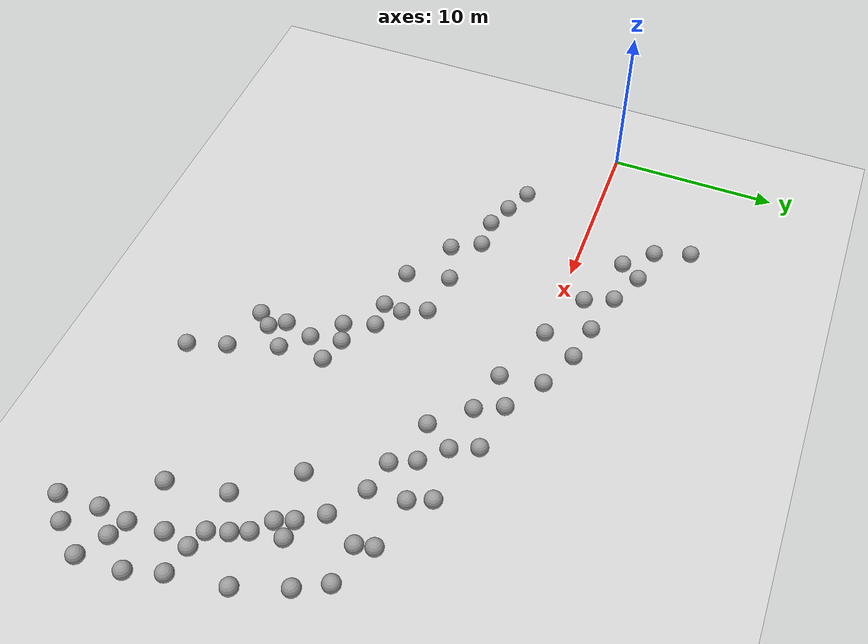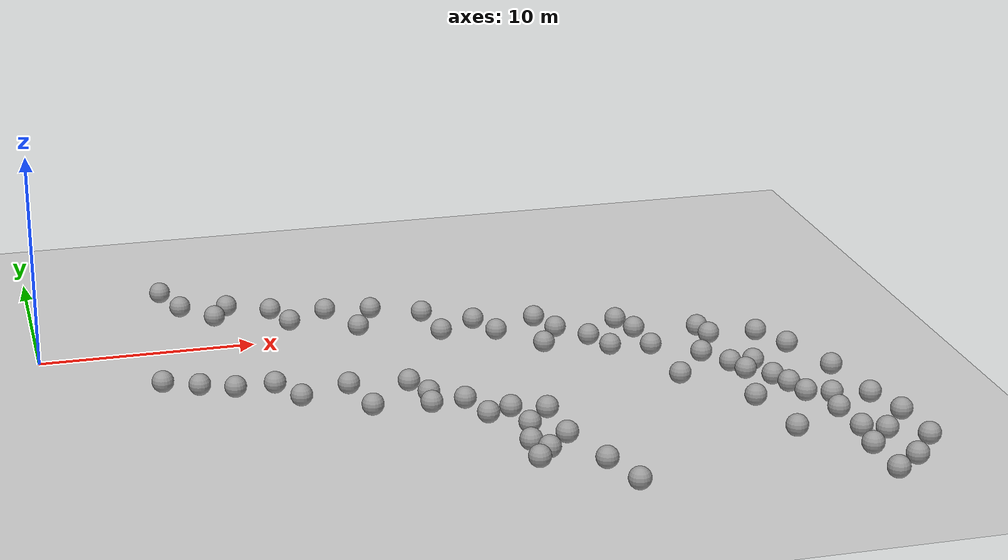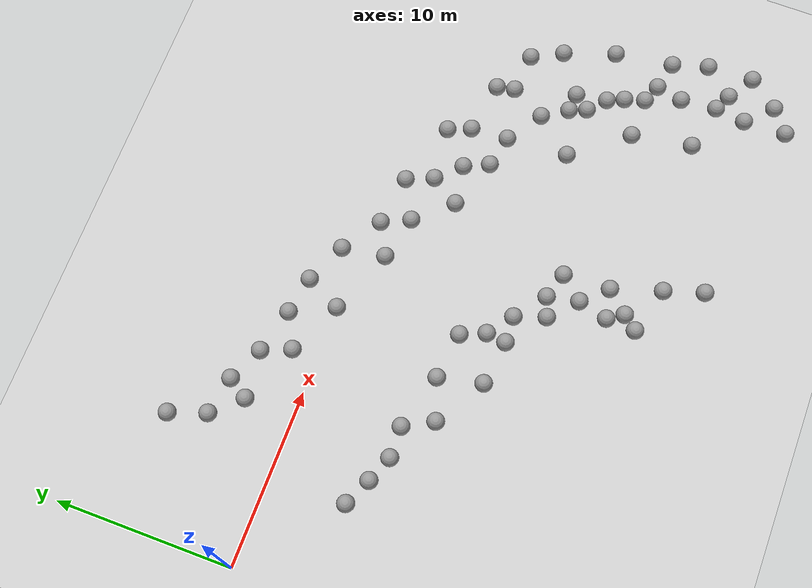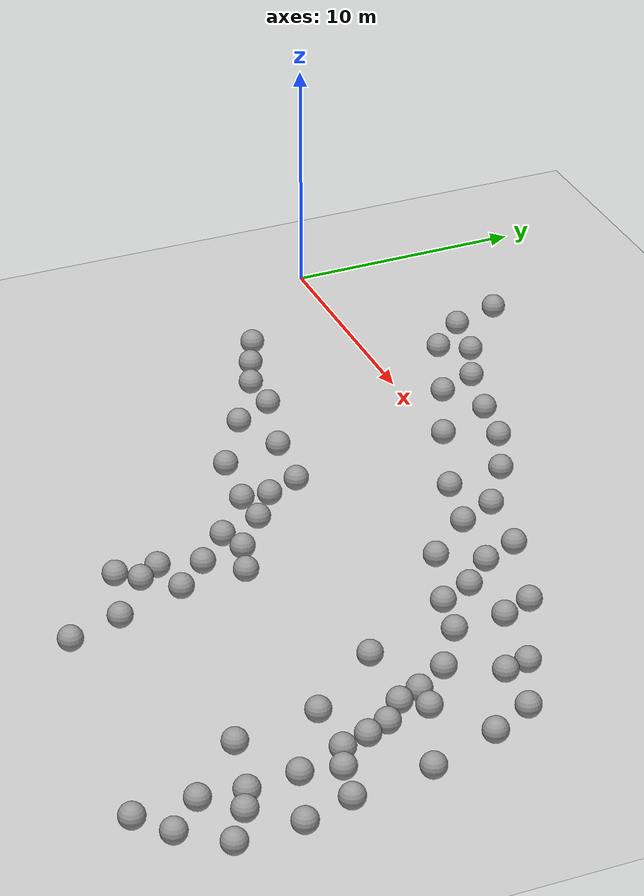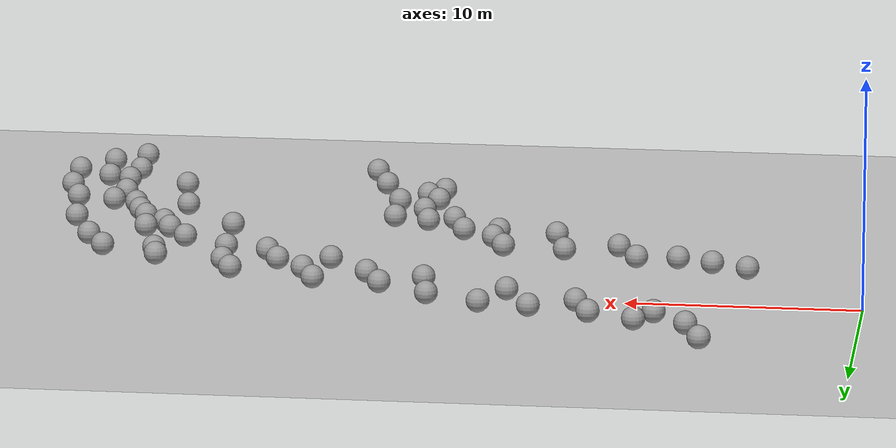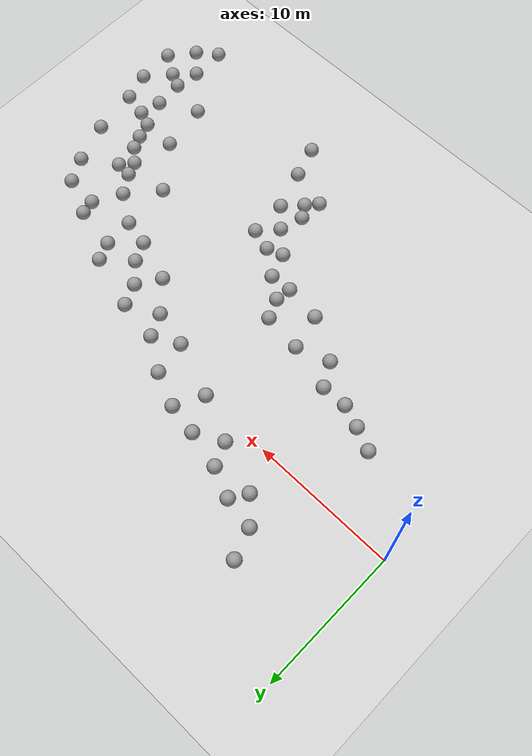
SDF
<sdf version="1.6">
 <world name="default">
  <model name="ground_plane">
   <static>1</static>
   <link name="link">
    <collision name="collision">
     <geometry><plane><normal>0 0 1</normal><size>100 100</size></plane></geometry>
     <surface><friction><ode><mu>100</mu><mu2>50</mu2></ode></friction></surface>
    </collision>
    <visual name="visual">
     <cast_shadows>0</cast_shadows>
     <geometry><plane><normal>0 0 1</normal><size>100 100</size></plane></geometry>
     <material>
      <script><uri>file://media/materials/scripts/gazebo.material</uri><name>Gazebo/Grey</name></script>
     </material>
    </visual>
   </link>
  </model>
  <model name="unit_sphere_0">
   <pose>5.15486 -4.38811 0.5 0 -0 0</pose>
   <link name="link">
    <inertial>
     <mass>1</mass>
     <inertia><ixx>0.1</ixx><ixy>0</ixy><ixz>0</ixz><iyy>0.1</iyy><iyz>0</iyz><izz>0.1</izz></inertia>
    </inertial>
    <collision name="collision"><geometry><sphere><radius>0.5</radius></sphere></geometry></collision>
    <visual name="visual">
     <geometry><sphere><radius>0.5</radius></sphere></geometry>
     <material>
      <script><name>Gazebo/Grey</name><uri>file://media/materials/scripts/gazebo.material</uri></script>
     </material>
    </visual>
   </link>
  </model>
  <model name="unit_sphere_0_clone">
   <pose>6.71384 -5.09296 0.5 0 -0 0</pose>
   <link name="link">
    <inertial>
     <mass>1</mass>
     <inertia><ixx>0.1</ixx><ixy>0</ixy><ixz>0</ixz><iyy>0.1</iyy><iyz>0</iyz><izz>0.1</izz></inertia>
    </inertial>
    <collision name="collision"><geometry><sphere><radius>0.5</radius></sphere></geometry></collision>
    <visual name="visual">
     <geometry><sphere><radius>0.5</radius></sphere></geometry>
     <material>
      <script><name>Gazebo/Grey</name><uri>file://media/materials/scripts/gazebo.material</uri></script>
     </material>
    </visual>
   </link>
  </model>
  <model name="unit_sphere_0_clone_0">
   <pose>8.23139 -5.68918 0.5 0 -0 0</pose>
   <link name="link">
    <inertial>
     <mass>1</mass>
     <inertia><ixx>0.1</ixx><ixy>0</ixy><ixz>0</ixz><iyy>0.1</iyy><iyz>0</iyz><izz>0.1</izz></inertia>
    </inertial>
    <collision name="collision"><geometry><sphere><radius>0.5</radius></sphere></geometry></collision>
    <visual name="visual">
     <geometry><sphere><radius>0.5</radius></sphere></geometry>
     <material>
      <script><name>Gazebo/Grey</name><uri>file://media/materials/scripts/gazebo.material</uri></script>
     </material>
    </visual>
   </link>
  </model>
  <model name="unit_sphere_0_clone_1">
   <pose>10.0198 -5.65385 0.5 0 -0 0</pose>
   <link name="link">
    <inertial>
     <mass>1</mass>
     <inertia><ixx>0.1</ixx><ixy>0</ixy><ixz>0</ixz><iyy>0.1</iyy><iyz>0</iyz><izz>0.1</izz></inertia>
    </inertial>
    <collision name="collision"><geometry><sphere><radius>0.5</radius></sphere></geometry></collision>
    <visual name="visual">
     <geometry><sphere><radius>0.5</radius></sphere></geometry>
     <material>
      <script><name>Gazebo/Grey</name><uri>file://media/materials/scripts/gazebo.material</uri></script>
     </material>
    </visual>
   </link>
  </model>
  <model name="unit_sphere_0_clone_2">
   <pose>10.9217 -7.29328 0.5 0 -0 0</pose>
   <link name="link">
    <inertial>
     <mass>1</mass>
     <inertia><ixx>0.1</ixx><ixy>0</ixy><ixz>0</ixz><iyy>0.1</iyy><iyz>0</iyz><izz>0.1</izz></inertia>
    </inertial>
    <collision name="collision"><geometry><sphere><radius>0.5</radius></sphere></geometry></collision>
    <visual name="visual">
     <geometry><sphere><radius>0.5</radius></sphere></geometry>
     <material>
      <script><name>Gazebo/Grey</name><uri>file://media/materials/scripts/gazebo.material</uri></script>
     </material>
    </visual>
   </link>
  </model>
  <model name="unit_sphere_0_clone_3">
   <pose>13.2089 -6.50721 0.5 0 -0 0</pose>
   <link name="link">
    <inertial>
     <mass>1</mass>
     <inertia><ixx>0.1</ixx><ixy>0</ixy><ixz>0</ixz><iyy>0.1</iyy><iyz>0</iyz><izz>0.1</izz></inertia>
    </inertial>
    <collision name="collision"><geometry><sphere><radius>0.5</radius></sphere></geometry></collision>
    <visual name="visual">
     <geometry><sphere><radius>0.5</radius></sphere></geometry>
     <material>
      <script><name>Gazebo/Grey</name><uri>file://media/materials/scripts/gazebo.material</uri></script>
     </material>
    </visual>
   </link>
  </model>
  <model name="unit_sphere_0_clone_4">
   <pose>13.7778 -8.99338 0.5 0 -0 0</pose>
   <link name="link">
    <inertial>
     <mass>1</mass>
     <inertia><ixx>0.1</ixx><ixy>0</ixy><ixz>0</ixz><iyy>0.1</iyy><iyz>0</iyz><izz>0.1</izz></inertia>
    </inertial>
    <collision name="collision"><geometry><sphere><radius>0.5</radius></sphere></geometry></collision>
    <visual name="visual">
     <geometry><sphere><radius>0.5</radius></sphere></geometry>
     <material>
      <script><name>Gazebo/Grey</name><uri>file://media/materials/scripts/gazebo.material</uri></script>
     </material>
    </visual>
   </link>
  </model>
  <model name="unit_sphere_0_clone_5">
   <pose>15.8904 -6.82279 0.5 0 -0 0</pose>
   <link name="link">
    <inertial>
     <mass>1</mass>
     <inertia><ixx>0.1</ixx><ixy>0</ixy><ixz>0</ixz><iyy>0.1</iyy><iyz>0</iyz><izz>0.1</izz></inertia>
    </inertial>
    <collision name="collision"><geometry><sphere><radius>0.5</radius></sphere></geometry></collision>
    <visual name="visual">
     <geometry><sphere><radius>0.5</radius></sphere></geometry>
     <material>
      <script><name>Gazebo/Grey</name><uri>file://media/materials/scripts/gazebo.material</uri></script>
     </material>
    </visual>
   </link>
  </model>
  <model name="unit_sphere_0_clone_6">
   <pose>16.3495 -9.32648 0.5 0 -0 0</pose>
   <link name="link">
    <inertial>
     <mass>1</mass>
     <inertia><ixx>0.1</ixx><ixy>0</ixy><ixz>0</ixz><iyy>0.1</iyy><iyz>0</iyz><izz>0.1</izz></inertia>
    </inertial>
    <collision name="collision"><geometry><sphere><radius>0.5</radius></sphere></geometry></collision>
    <visual name="visual">
     <geometry><sphere><radius>0.5</radius></sphere></geometry>
     <material>
      <script><name>Gazebo/Grey</name><uri>file://media/materials/scripts/gazebo.material</uri></script>
     </material>
    </visual>
   </link>
  </model>
  <model name="unit_sphere_0_clone_7">
   <pose>7.08774 4.29856 0.5 0 -0 0</pose>
   <link name="link">
    <inertial>
     <mass>1</mass>
     <inertia><ixx>0.1</ixx><ixy>0</ixy><ixz>0</ixz><iyy>0.1</iyy><iyz>0</iyz><izz>0.1</izz></inertia>
    </inertial>
    <collision name="collision"><geometry><sphere><radius>0.5</radius></sphere></geometry></collision>
    <visual name="visual">
     <geometry><sphere><radius>0.5</radius></sphere></geometry>
     <material>
      <script><name>Gazebo/Grey</name><uri>file://media/materials/scripts/gazebo.material</uri></script>
     </material>
    </visual>
   </link>
  </model>
  <model name="unit_sphere_0_clone_8">
   <pose>8.53893 2.74635 0.5 0 -0 0</pose>
   <link name="link">
    <inertial>
     <mass>1</mass>
     <inertia><ixx>0.1</ixx><ixy>0</ixy><ixz>0</ixz><iyy>0.1</iyy><iyz>0</iyz><izz>0.1</izz></inertia>
    </inertial>
    <collision name="collision"><geometry><sphere><radius>0.5</radius></sphere></geometry></collision>
    <visual name="visual">
     <geometry><sphere><radius>0.5</radius></sphere></geometry>
     <material>
      <script><name>Gazebo/Grey</name><uri>file://media/materials/scripts/gazebo.material</uri></script>
     </material>
    </visual>
   </link>
  </model>
  <model name="unit_sphere_0_clone_9">
   <pose>9.28861 3.90002 0.5 0 -0 0</pose>
   <link name="link">
    <inertial>
     <mass>1</mass>
     <inertia><ixx>0.1</ixx><ixy>0</ixy><ixz>0</ixz><iyy>0.1</iyy><iyz>0</iyz><izz>0.1</izz></inertia>
    </inertial>
    <collision name="collision"><geometry><sphere><radius>0.5</radius></sphere></geometry></collision>
    <visual name="visual">
     <geometry><sphere><radius>0.5</radius></sphere></geometry>
     <material>
      <script><name>Gazebo/Grey</name><uri>file://media/materials/scripts/gazebo.material</uri></script>
     </material>
    </visual>
   </link>
  </model>
  <model name="unit_sphere_0_clone_10">
   <pose>11.2754 3.00631 0.5 0 -0 0</pose>
   <link name="link">
    <inertial>
     <mass>1</mass>
     <inertia><ixx>0.1</ixx><ixy>0</ixy><ixz>0</ixz><iyy>0.1</iyy><iyz>0</iyz><izz>0.1</izz></inertia>
    </inertial>
    <collision name="collision"><geometry><sphere><radius>0.5</radius></sphere></geometry></collision>
    <visual name="visual">
     <geometry><sphere><radius>0.5</radius></sphere></geometry>
     <material>
      <script><name>Gazebo/Grey</name><uri>file://media/materials/scripts/gazebo.material</uri></script>
     </material>
    </visual>
   </link>
  </model>
  <model name="unit_sphere_0_clone_11">
   <pose>11.9433 1.38371 0.5 0 -0 0</pose>
   <link name="link">
    <inertial>
     <mass>1</mass>
     <inertia><ixx>0.1</ixx><ixy>0</ixy><ixz>0</ixz><iyy>0.1</iyy><iyz>0</iyz><izz>0.1</izz></inertia>
    </inertial>
    <collision name="collision"><geometry><sphere><radius>0.5</radius></sphere></geometry></collision>
    <visual name="visual">
     <geometry><sphere><radius>0.5</radius></sphere></geometry>
     <material>
      <script><name>Gazebo/Grey</name><uri>file://media/materials/scripts/gazebo.material</uri></script>
     </material>
    </visual>
   </link>
  </model>
  <model name="unit_sphere_0_clone_12">
   <pose>13.8434 2.38423 0.5 0 -0 0</pose>
   <link name="link">
    <inertial>
     <mass>1</mass>
     <inertia><ixx>0.1</ixx><ixy>0</ixy><ixz>0</ixz><iyy>0.1</iyy><iyz>0</iyz><izz>0.1</izz></inertia>
    </inertial>
    <collision name="collision"><geometry><sphere><radius>0.5</radius></sphere></geometry></collision>
    <visual name="visual">
     <geometry><sphere><radius>0.5</radius></sphere></geometry>
     <material>
      <script><name>Gazebo/Grey</name><uri>file://media/materials/scripts/gazebo.material</uri></script>
     </material>
    </visual>
   </link>
  </model>
  <model name="unit_sphere_0_clone_13">
   <pose>15 0 0.5 0 -0 0</pose>
   <link name="link">
    <inertial>
     <mass>1</mass>
     <inertia><ixx>0.1</ixx><ixy>0</ixy><ixz>0</ixz><iyy>0.1</iyy><iyz>0</iyz><izz>0.1</izz></inertia>
    </inertial>
    <collision name="collision"><geometry><sphere><radius>0.5</radius></sphere></geometry></collision>
    <visual name="visual">
     <geometry><sphere><radius>0.5</radius></sphere></geometry>
     <material>
      <script><name>Gazebo/Grey</name><uri>file://media/materials/scripts/gazebo.material</uri></script>
     </material>
    </visual>
   </link>
  </model>
  <model name="unit_sphere_0_clone_14">
   <pose>16 2 0.5 0 -0 0</pose>
   <link name="link">
    <inertial>
     <mass>1</mass>
     <inertia><ixx>0.1</ixx><ixy>0</ixy><ixz>0</ixz><iyy>0.1</iyy><iyz>0</iyz><izz>0.1</izz></inertia>
    </inertial>
    <collision name="collision"><geometry><sphere><radius>0.5</radius></sphere></geometry></collision>
    <visual name="visual">
     <geometry><sphere><radius>0.5</radius></sphere></geometry>
     <material>
      <script><name>Gazebo/Grey</name><uri>file://media/materials/scripts/gazebo.material</uri></script>
     </material>
    </visual>
   </link>
  </model>
  <model name="unit_sphere_0_clone_15">
   <pose>18.3018 0.995003 0.5 0 -0 0</pose>
   <link name="link">
    <inertial>
     <mass>1</mass>
     <inertia><ixx>0.1</ixx><ixy>0</ixy><ixz>0</ixz><iyy>0.1</iyy><iyz>0</iyz><izz>0.1</izz></inertia>
    </inertial>
    <collision name="collision"><geometry><sphere><radius>0.5</radius></sphere></geometry></collision>
    <visual name="visual">
     <geometry><sphere><radius>0.5</radius></sphere></geometry>
     <material>
      <script><name>Gazebo/Grey</name><uri>file://media/materials/scripts/gazebo.material</uri></script>
     </material>
    </visual>
   </link>
  </model>
  <model name="unit_sphere_0_clone_16">
   <pose>20.4898 -0.468795 0.5 0 -0 0</pose>
   <link name="link">
    <inertial>
     <mass>1</mass>
     <inertia><ixx>0.1</ixx><ixy>0</ixy><ixz>0</ixz><iyy>0.1</iyy><iyz>0</iyz><izz>0.1</izz></inertia>
    </inertial>
    <collision name="collision"><geometry><sphere><radius>0.5</radius></sphere></geometry></collision>
    <visual name="visual">
     <geometry><sphere><radius>0.5</radius></sphere></geometry>
     <material>
      <script><name>Gazebo/Grey</name><uri>file://media/materials/scripts/gazebo.material</uri></script>
     </material>
    </visual>
   </link>
  </model>
  <model name="unit_sphere_0_clone_17">
   <pose>24.0194 -2.37066 0.5 0 -0 0</pose>
   <link name="link">
    <inertial>
     <mass>1</mass>
     <inertia><ixx>0.1</ixx><ixy>0</ixy><ixz>0</ixz><iyy>0.1</iyy><iyz>0</iyz><izz>0.1</izz></inertia>
    </inertial>
    <collision name="collision"><geometry><sphere><radius>0.5</radius></sphere></geometry></collision>
    <visual name="visual">
     <geometry><sphere><radius>0.5</radius></sphere></geometry>
     <material>
      <script><name>Gazebo/Grey</name><uri>file://media/materials/scripts/gazebo.material</uri></script>
     </material>
    </visual>
   </link>
  </model>
  <model name="unit_sphere_0_clone_18">
   <pose>27.7503 -5.42436 0.5 0 -0 0</pose>
   <link name="link">
    <inertial>
     <mass>1</mass>
     <inertia><ixx>0.1</ixx><ixy>0</ixy><ixz>0</ixz><iyy>0.1</iyy><iyz>0</iyz><izz>0.1</izz></inertia>
    </inertial>
    <collision name="collision"><geometry><sphere><radius>0.5</radius></sphere></geometry></collision>
    <visual name="visual">
     <geometry><sphere><radius>0.5</radius></sphere></geometry>
     <material>
      <script><name>Gazebo/Grey</name><uri>file://media/materials/scripts/gazebo.material</uri></script>
     </material>
    </visual>
   </link>
  </model>
  <model name="unit_sphere_0_clone_19">
   <pose>31.725 -8.24813 0.5 -0.000582 0.034039 -2.3e-05</pose>
   <link name="link">
    <inertial>
     <mass>1</mass>
     <inertia><ixx>0.1</ixx><ixy>0</ixy><ixz>0</ixz><iyy>0.1</iyy><iyz>0</iyz><izz>0.1</izz></inertia>
    </inertial>
    <collision name="collision"><geometry><sphere><radius>0.5</radius></sphere></geometry></collision>
    <visual name="visual">
     <geometry><sphere><radius>0.5</radius></sphere></geometry>
     <material>
      <script><name>Gazebo/Grey</name><uri>file://media/materials/scripts/gazebo.material</uri></script>
     </material>
    </visual>
   </link>
  </model>
  <model name="unit_sphere_0_clone_20">
   <pose>33.8259 -12.4839 0.5 0 -0 0</pose>
   <link name="link">
    <inertial>
     <mass>1</mass>
     <inertia><ixx>0.1</ixx><ixy>0</ixy><ixz>0</ixz><iyy>0.1</iyy><iyz>0</iyz><izz>0.1</izz></inertia>
    </inertial>
    <collision name="collision"><geometry><sphere><radius>0.5</radius></sphere></geometry></collision>
    <visual name="visual">
     <geometry><sphere><radius>0.5</radius></sphere></geometry>
     <material>
      <script><name>Gazebo/Grey</name><uri>file://media/materials/scripts/gazebo.material</uri></script>
     </material>
    </visual>
   </link>
  </model>
  <model name="unit_sphere_0_clone_21">
   <pose>34.8751 -19.1706 0.5 0 -0 0</pose>
   <link name="link">
    <inertial>
     <mass>1</mass>
     <inertia><ixx>0.1</ixx><ixy>0</ixy><ixz>0</ixz><iyy>0.1</iyy><iyz>0</iyz><izz>0.1</izz></inertia>
    </inertial>
    <collision name="collision"><geometry><sphere><radius>0.5</radius></sphere></geometry></collision>
    <visual name="visual">
     <geometry><sphere><radius>0.5</radius></sphere></geometry>
     <material>
      <script><name>Gazebo/Grey</name><uri>file://media/materials/scripts/gazebo.material</uri></script>
     </material>
    </visual>
   </link>
  </model>
  <model name="unit_sphere_0_clone_50">
   <pose>18.4855 -10.9718 0.5 0 -0 0</pose>
   <link name="link">
    <inertial>
     <mass>1</mass>
     <inertia><ixx>0.1</ixx><ixy>0</ixy><ixz>0</ixz><iyy>0.1</iyy><iyz>0</iyz><izz>0.1</izz></inertia>
    </inertial>
    <collision name="collision"><geometry><sphere><radius>0.5</radius></sphere></geometry></collision>
    <visual name="visual">
     <geometry><sphere><radius>0.5</radius></sphere></geometry>
     <material>
      <script><name>Gazebo/Grey</name><uri>file://media/materials/scripts/gazebo.material</uri></script>
     </material>
    </visual>
   </link>
  </model>
  <model name="unit_sphere_0_clone_51">
   <pose>19.5403 -14.0463 0.5 -0.045638 -0.021146 0.024372</pose>
   <link name="link">
    <inertial>
     <mass>1</mass>
     <inertia><ixx>0.1</ixx><ixy>0</ixy><ixz>0</ixz><iyy>0.1</iyy><iyz>0</iyz><izz>0.1</izz></inertia>
    </inertial>
    <collision name="collision"><geometry><sphere><radius>0.5</radius></sphere></geometry></collision>
    <visual name="visual">
     <geometry><sphere><radius>0.5</radius></sphere></geometry>
     <material>
      <script><name>Gazebo/Grey</name><uri>file://media/materials/scripts/gazebo.material</uri></script>
     </material>
    </visual>
   </link>
  </model>
  <model name="unit_sphere_0_clone_52">
   <pose>22.8458 -18.6808 0.5 0 -0 0</pose>
   <link name="link">
    <inertial>
     <mass>1</mass>
     <inertia><ixx>0.1</ixx><ixy>0</ixy><ixz>0</ixz><iyy>0.1</iyy><iyz>0</iyz><izz>0.1</izz></inertia>
    </inertial>
    <collision name="collision"><geometry><sphere><radius>0.5</radius></sphere></geometry></collision>
    <visual name="visual">
     <geometry><sphere><radius>0.5</radius></sphere></geometry>
     <material>
      <script><name>Gazebo/Grey</name><uri>file://media/materials/scripts/gazebo.material</uri></script>
     </material>
    </visual>
   </link>
  </model>
  <model name="unit_sphere_0_clone_70">
   <pose>22.1416 -16.4882 0.5 0 -0 0</pose>
   <link name="link">
    <inertial>
     <mass>1</mass>
     <inertia><ixx>0.1</ixx><ixy>0</ixy><ixz>0</ixz><iyy>0.1</iyy><iyz>0</iyz><izz>0.1</izz></inertia>
    </inertial>
    <collision name="collision"><geometry><sphere><radius>0.5</radius></sphere></geometry></collision>
    <visual name="visual">
     <geometry><sphere><radius>0.5</radius></sphere></geometry>
     <material>
      <script><name>Gazebo/Grey</name><uri>file://media/materials/scripts/gazebo.material</uri></script>
     </material>
    </visual>
   </link>
  </model>
  <model name="unit_sphere_0_clone_115">
   <pose>27.0928 -2.03293 0.5 0 -0 0</pose>
   <link name="link">
    <inertial>
     <mass>1</mass>
     <inertia><ixx>0.1</ixx><ixy>0</ixy><ixz>0</ixz><iyy>0.1</iyy><iyz>0</iyz><izz>0.1</izz></inertia>
    </inertial>
    <collision name="collision"><geometry><sphere><radius>0.5</radius></sphere></geometry></collision>
    <visual name="visual">
     <geometry><sphere><radius>0.5</radius></sphere></geometry>
     <material>
      <script><name>Gazebo/Grey</name><uri>file://media/materials/scripts/gazebo.material</uri></script>
     </material>
    </visual>
   </link>
  </model>
  <model name="unit_sphere_0_clone_116">
   <pose>30.5875 -3.79442 0.5 -0.027113 -0.006178 6.5e-05</pose>
   <link name="link">
    <inertial>
     <mass>1</mass>
     <inertia><ixx>0.1</ixx><ixy>0</ixy><ixz>0</ixz><iyy>0.1</iyy><iyz>0</iyz><izz>0.1</izz></inertia>
    </inertial>
    <collision name="collision"><geometry><sphere><radius>0.5</radius></sphere></geometry></collision>
    <visual name="visual">
     <geometry><sphere><radius>0.5</radius></sphere></geometry>
     <material>
      <script><name>Gazebo/Grey</name><uri>file://media/materials/scripts/gazebo.material</uri></script>
     </material>
    </visual>
   </link>
  </model>
  <model name="unit_sphere_0_clone_117">
   <pose>35 -9.57963 0.5 0 -0 0</pose>
   <link name="link">
    <inertial>
     <mass>1</mass>
     <inertia><ixx>0.1</ixx><ixy>0</ixy><ixz>0</ixz><iyy>0.1</iyy><iyz>0</iyz><izz>0.1</izz></inertia>
    </inertial>
    <collision name="collision"><geometry><sphere><radius>0.5</radius></sphere></geometry></collision>
    <visual name="visual">
     <geometry><sphere><radius>0.5</radius></sphere></geometry>
     <material>
      <script><name>Gazebo/Grey</name><uri>file://media/materials/scripts/gazebo.material</uri></script>
     </material>
    </visual>
   </link>
  </model>
  <model name="unit_sphere_0_clone_118">
   <pose>34.6829 -16.5119 0.5 0 -0 0</pose>
   <link name="link">
    <inertial>
     <mass>1</mass>
     <inertia><ixx>0.1</ixx><ixy>0</ixy><ixz>0</ixz><iyy>0.1</iyy><iyz>0</iyz><izz>0.1</izz></inertia>
    </inertial>
    <collision name="collision"><geometry><sphere><radius>0.5</radius></sphere></geometry></collision>
    <visual name="visual">
     <geometry><sphere><radius>0.5</radius></sphere></geometry>
     <material>
      <script><name>Gazebo/Grey</name><uri>file://media/materials/scripts/gazebo.material</uri></script>
     </material>
    </visual>
   </link>
  </model>
  <model name="unit_sphere_1">
   <pose>35.4809 -12.8641 0.5 0 -0 0</pose>
   <link name="link">
    <inertial>
     <mass>1</mass>
     <inertia><ixx>0.1</ixx><ixy>0</ixy><ixz>0</ixz><iyy>0.1</iyy><iyz>0</iyz><izz>0.1</izz></inertia>
    </inertial>
    <collision name="collision"><geometry><sphere><radius>0.5</radius></sphere></geometry></collision>
    <visual name="visual">
     <geometry><sphere><radius>0.5</radius></sphere></geometry>
     <material>
      <script><name>Gazebo/Grey</name><uri>file://media/materials/scripts/gazebo.material</uri></script>
     </material>
    </visual>
   </link>
  </model>
  <model name="unit_sphere_1_clone">
   <pose>36.0806 -14.8694 0.5 0 -0 0</pose>
   <link name="link">
    <inertial>
     <mass>1</mass>
     <inertia><ixx>0.1</ixx><ixy>0</ixy><ixz>0</ixz><iyy>0.1</iyy><iyz>0</iyz><izz>0.1</izz></inertia>
    </inertial>
    <collision name="collision"><geometry><sphere><radius>0.5</radius></sphere></geometry></collision>
    <visual name="visual">
     <geometry><sphere><radius>0.5</radius></sphere></geometry>
     <material>
      <script><name>Gazebo/Grey</name><uri>file://media/materials/scripts/gazebo.material</uri></script>
     </material>
    </visual>
   </link>
  </model>
  <model name="unit_sphere_1_clone_0">
   <pose>36.1901 -17.4913 0.5 0 -0 0</pose>
   <link name="link">
    <inertial>
     <mass>1</mass>
     <inertia><ixx>0.1</ixx><ixy>0</ixy><ixz>0</ixz><iyy>0.1</iyy><iyz>0</iyz><izz>0.1</izz></inertia>
    </inertial>
    <collision name="collision"><geometry><sphere><radius>0.5</radius></sphere></geometry></collision>
    <visual name="visual">
     <geometry><sphere><radius>0.5</radius></sphere></geometry>
     <material>
      <script><name>Gazebo/Grey</name><uri>file://media/materials/scripts/gazebo.material</uri></script>
     </material>
    </visual>
   </link>
  </model>
  <model name="unit_sphere_1_clone_2">
   <pose>21.1177 -11.0515 0.5 0 -0 0</pose>
   <link name="link">
    <inertial>
     <mass>1</mass>
     <inertia><ixx>0.1</ixx><ixy>0</ixy><ixz>0</ixz><iyy>0.1</iyy><iyz>0</iyz><izz>0.1</izz></inertia>
    </inertial>
    <collision name="collision"><geometry><sphere><radius>0.5</radius></sphere></geometry></collision>
    <visual name="visual">
     <geometry><sphere><radius>0.5</radius></sphere></geometry>
     <material>
      <script><name>Gazebo/Grey</name><uri>file://media/materials/scripts/gazebo.material</uri></script>
     </material>
    </visual>
   </link>
  </model>
  <model name="unit_sphere_1_clone_4">
   <pose>21.2329 -13.709 0.5 0 -0 0</pose>
   <link name="link">
    <inertial>
     <mass>1</mass>
     <inertia><ixx>0.1</ixx><ixy>0</ixy><ixz>0</ixz><iyy>0.1</iyy><iyz>0</iyz><izz>0.1</izz></inertia>
    </inertial>
    <collision name="collision"><geometry><sphere><radius>0.5</radius></sphere></geometry></collision>
    <visual name="visual">
     <geometry><sphere><radius>0.5</radius></sphere></geometry>
     <material>
      <script><name>Gazebo/Grey</name><uri>file://media/materials/scripts/gazebo.material</uri></script>
     </material>
    </visual>
   </link>
  </model>
  <model name="unit_sphere_1_clone_283">
   <pose>33.0909 -4.99355 0.5 0 -0 0</pose>
   <link name="link">
    <inertial>
     <mass>1</mass>
     <inertia><ixx>0.1</ixx><ixy>0</ixy><ixz>0</ixz><iyy>0.1</iyy><iyz>0</iyz><izz>0.1</izz></inertia>
    </inertial>
    <collision name="collision"><geometry><sphere><radius>0.5</radius></sphere></geometry></collision>
    <visual name="visual">
     <geometry><sphere><radius>0.5</radius></sphere></geometry>
     <material>
      <script><name>Gazebo/Grey</name><uri>file://media/materials/scripts/gazebo.material</uri></script>
     </material>
    </visual>
   </link>
  </model>
  <model name="unit_sphere_1_clone_284">
   <pose>32.4057 -10.9332 0.5 0 -0 0</pose>
   <link name="link">
    <inertial>
     <mass>1</mass>
     <inertia><ixx>0.1</ixx><ixy>0</ixy><ixz>0</ixz><iyy>0.1</iyy><iyz>0</iyz><izz>0.1</izz></inertia>
    </inertial>
    <collision name="collision"><geometry><sphere><radius>0.5</radius></sphere></geometry></collision>
    <visual name="visual">
     <geometry><sphere><radius>0.5</radius></sphere></geometry>
     <material>
      <script><name>Gazebo/Grey</name><uri>file://media/materials/scripts/gazebo.material</uri></script>
     </material>
    </visual>
   </link>
  </model>
  <model name="unit_sphere_1_clone_285">
   <pose>33.9856 -6.71412 0.5 0 -0 0</pose>
   <link name="link">
    <inertial>
     <mass>1</mass>
     <inertia><ixx>0.1</ixx><ixy>0</ixy><ixz>0</ixz><iyy>0.1</iyy><iyz>0</iyz><izz>0.1</izz></inertia>
    </inertial>
    <collision name="collision"><geometry><sphere><radius>0.5</radius></sphere></geometry></collision>
    <visual name="visual">
     <geometry><sphere><radius>0.5</radius></sphere></geometry>
     <material>
      <script><name>Gazebo/Grey</name><uri>file://media/materials/scripts/gazebo.material</uri></script>
     </material>
    </visual>
   </link>
  </model>
  <model name="unit_sphere_1_clone_286">
   <pose>29.7496 -6.77487 0.5 0 -0 0</pose>
   <link name="link">
    <inertial>
     <mass>1</mass>
     <inertia><ixx>0.1</ixx><ixy>0</ixy><ixz>0</ixz><iyy>0.1</iyy><iyz>0</iyz><izz>0.1</izz></inertia>
    </inertial>
    <collision name="collision"><geometry><sphere><radius>0.5</radius></sphere></geometry></collision>
    <visual name="visual">
     <geometry><sphere><radius>0.5</radius></sphere></geometry>
     <material>
      <script><name>Gazebo/Grey</name><uri>file://media/materials/scripts/gazebo.material</uri></script>
     </material>
    </visual>
   </link>
  </model>
  <model name="unit_sphere_1_clone_287">
   <pose>30.8158 -4.79641 0.5 0.02699 0.006274 6.7e-05</pose>
   <link name="link">
    <inertial>
     <mass>1</mass>
     <inertia><ixx>0.1</ixx><ixy>0</ixy><ixz>0</ixz><iyy>0.1</iyy><iyz>0</iyz><izz>0.1</izz></inertia>
    </inertial>
    <collision name="collision"><geometry><sphere><radius>0.5</radius></sphere></geometry></collision>
    <visual name="visual">
     <geometry><sphere><radius>0.5</radius></sphere></geometry>
     <material>
      <script><name>Gazebo/Grey</name><uri>file://media/materials/scripts/gazebo.material</uri></script>
     </material>
    </visual>
   </link>
  </model>
  <model name="unit_sphere_1_clone_288">
   <pose>27.6151 -3.30373 0.5 0 -0 0</pose>
   <link name="link">
    <inertial>
     <mass>1</mass>
     <inertia><ixx>0.1</ixx><ixy>0</ixy><ixz>0</ixz><iyy>0.1</iyy><iyz>0</iyz><izz>0.1</izz></inertia>
    </inertial>
    <collision name="collision"><geometry><sphere><radius>0.5</radius></sphere></geometry></collision>
    <visual name="visual">
     <geometry><sphere><radius>0.5</radius></sphere></geometry>
     <material>
      <script><name>Gazebo/Grey</name><uri>file://media/materials/scripts/gazebo.material</uri></script>
     </material>
    </visual>
   </link>
  </model>
  <model name="unit_sphere_1_clone_289">
   <pose>21.2148 -2.02354 0.5 0 -0 0</pose>
   <link name="link">
    <inertial>
     <mass>1</mass>
     <inertia><ixx>0.1</ixx><ixy>0</ixy><ixz>0</ixz><iyy>0.1</iyy><iyz>0</iyz><izz>0.1</izz></inertia>
    </inertial>
    <collision name="collision"><geometry><sphere><radius>0.5</radius></sphere></geometry></collision>
    <visual name="visual">
     <geometry><sphere><radius>0.5</radius></sphere></geometry>
     <material>
      <script><name>Gazebo/Grey</name><uri>file://media/materials/scripts/gazebo.material</uri></script>
     </material>
    </visual>
   </link>
  </model>
  <model name="unit_sphere_1_clone_290">
   <pose>25.2705 -3.65337 0.5 0 -0 0</pose>
   <link name="link">
    <inertial>
     <mass>1</mass>
     <inertia><ixx>0.1</ixx><ixy>0</ixy><ixz>0</ixz><iyy>0.1</iyy><iyz>0</iyz><izz>0.1</izz></inertia>
    </inertial>
    <collision name="collision"><geometry><sphere><radius>0.5</radius></sphere></geometry></collision>
    <visual name="visual">
     <geometry><sphere><radius>0.5</radius></sphere></geometry>
     <material>
      <script><name>Gazebo/Grey</name><uri>file://media/materials/scripts/gazebo.material</uri></script>
     </material>
    </visual>
   </link>
  </model>
  <model name="unit_sphere_1_clone_291">
   <pose>18.6935 -1.42997 0.5 0 -0 0</pose>
   <link name="link">
    <inertial>
     <mass>1</mass>
     <inertia><ixx>0.1</ixx><ixy>0</ixy><ixz>0</ixz><iyy>0.1</iyy><iyz>0</iyz><izz>0.1</izz></inertia>
    </inertial>
    <collision name="collision"><geometry><sphere><radius>0.5</radius></sphere></geometry></collision>
    <visual name="visual">
     <geometry><sphere><radius>0.5</radius></sphere></geometry>
     <material>
      <script><name>Gazebo/Grey</name><uri>file://media/materials/scripts/gazebo.material</uri></script>
     </material>
    </visual>
   </link>
  </model>
  <model name="unit_sphere_1_clone_292">
   <pose>6.366 6.35482 0.5 0 -0 0</pose>
   <link name="link">
    <inertial>
     <mass>1</mass>
     <inertia><ixx>0.1</ixx><ixy>0</ixy><ixz>0</ixz><iyy>0.1</iyy><iyz>0</iyz><izz>0.1</izz></inertia>
    </inertial>
    <collision name="collision"><geometry><sphere><radius>0.5</radius></sphere></geometry></collision>
    <visual name="visual">
     <geometry><sphere><radius>0.5</radius></sphere></geometry>
     <material>
      <script><name>Gazebo/Grey</name><uri>file://media/materials/scripts/gazebo.material</uri></script>
     </material>
    </visual>
   </link>
  </model>
  <model name="unit_sphere_0_clone_6_clone">
   <pose>16.4791 -8.20069 0.5 0 -0 0</pose>
   <link name="link">
    <inertial>
     <mass>1</mass>
     <inertia><ixx>0.1</ixx><ixy>0</ixy><ixz>0</ixz><iyy>0.1</iyy><iyz>0</iyz><izz>0.1</izz></inertia>
    </inertial>
    <collision name="collision"><geometry><sphere><radius>0.5</radius></sphere></geometry></collision>
    <visual name="visual">
     <geometry><sphere><radius>0.5</radius></sphere></geometry>
     <material>
      <script><name>Gazebo/Grey</name><uri>file://media/materials/scripts/gazebo.material</uri></script>
     </material>
    </visual>
   </link>
  </model>
  <model name="unit_sphere_0_clone_6_clone_0">
   <pose>17.8797 -9.24904 0.5 0 -0 0</pose>
   <link name="link">
    <inertial>
     <mass>1</mass>
     <inertia><ixx>0.1</ixx><ixy>0</ixy><ixz>0</ixz><iyy>0.1</iyy><iyz>0</iyz><izz>0.1</izz></inertia>
    </inertial>
    <collision name="collision"><geometry><sphere><radius>0.5</radius></sphere></geometry></collision>
    <visual name="visual">
     <geometry><sphere><radius>0.5</radius></sphere></geometry>
     <material>
      <script><name>Gazebo/Grey</name><uri>file://media/materials/scripts/gazebo.material</uri></script>
     </material>
    </visual>
   </link>
  </model>
  <model name="unit_sphere_0_clone_6_clone_1">
   <pose>19.5955 -10.5843 0.5 0 -0 0</pose>
   <link name="link">
    <inertial>
     <mass>1</mass>
     <inertia><ixx>0.1</ixx><ixy>0</ixy><ixz>0</ixz><iyy>0.1</iyy><iyz>0</iyz><izz>0.1</izz></inertia>
    </inertial>
    <collision name="collision"><geometry><sphere><radius>0.5</radius></sphere></geometry></collision>
    <visual name="visual">
     <geometry><sphere><radius>0.5</radius></sphere></geometry>
     <material>
      <script><name>Gazebo/Grey</name><uri>file://media/materials/scripts/gazebo.material</uri></script>
     </material>
    </visual>
   </link>
  </model>
  <model name="unit_sphere_0_clone_6_clone_2">
   <pose>19.9647 -12.3564 0.5 0 -0 0</pose>
   <link name="link">
    <inertial>
     <mass>1</mass>
     <inertia><ixx>0.1</ixx><ixy>0</ixy><ixz>0</ixz><iyy>0.1</iyy><iyz>0</iyz><izz>0.1</izz></inertia>
    </inertial>
    <collision name="collision"><geometry><sphere><radius>0.5</radius></sphere></geometry></collision>
    <visual name="visual">
     <geometry><sphere><radius>0.5</radius></sphere></geometry>
     <material>
      <script><name>Gazebo/Grey</name><uri>file://media/materials/scripts/gazebo.material</uri></script>
     </material>
    </visual>
   </link>
  </model>
  <model name="unit_sphere_0_clone_6_clone_3">
   <pose>19.4455 -15.7264 0.5 0.03899 -0.029154 -0.013023</pose>
   <link name="link">
    <inertial>
     <mass>1</mass>
     <inertia><ixx>0.1</ixx><ixy>0</ixy><ixz>0</ixz><iyy>0.1</iyy><iyz>0</iyz><izz>0.1</izz></inertia>
    </inertial>
    <collision name="collision"><geometry><sphere><radius>0.5</radius></sphere></geometry></collision>
    <visual name="visual">
     <geometry><sphere><radius>0.5</radius></sphere></geometry>
     <material>
      <script><name>Gazebo/Grey</name><uri>file://media/materials/scripts/gazebo.material</uri></script>
     </material>
    </visual>
   </link>
  </model>
  <model name="unit_sphere_0_clone_6_clone_4">
   <pose>20.1061 -14.9291 0.5 0.019132 0.058875 0.012002</pose>
   <link name="link">
    <inertial>
     <mass>1</mass>
     <inertia><ixx>0.1</ixx><ixy>0</ixy><ixz>0</ixz><iyy>0.1</iyy><iyz>0</iyz><izz>0.1</izz></inertia>
    </inertial>
    <collision name="collision"><geometry><sphere><radius>0.5</radius></sphere></geometry></collision>
    <visual name="visual">
     <geometry><sphere><radius>0.5</radius></sphere></geometry>
     <material>
      <script><name>Gazebo/Grey</name><uri>file://media/materials/scripts/gazebo.material</uri></script>
     </material>
    </visual>
   </link>
  </model>
  <model name="unit_sphere_0_clone_6_clone_5">
   <pose>30.651 -8.15698 0.5 -0.021377 -0.037336 0.013481</pose>
   <link name="link">
    <inertial>
     <mass>1</mass>
     <inertia><ixx>0.1</ixx><ixy>0</ixy><ixz>0</ixz><iyy>0.1</iyy><iyz>0</iyz><izz>0.1</izz></inertia>
    </inertial>
    <collision name="collision"><geometry><sphere><radius>0.5</radius></sphere></geometry></collision>
    <visual name="visual">
     <geometry><sphere><radius>0.5</radius></sphere></geometry>
     <material>
      <script><name>Gazebo/Grey</name><uri>file://media/materials/scripts/gazebo.material</uri></script>
     </material>
    </visual>
   </link>
  </model>
  <model name="unit_sphere_0_clone_6_clone_6">
   <pose>31.0421 -9.11239 0.5 0.031423 0.007284 0.013193</pose>
   <link name="link">
    <inertial>
     <mass>1</mass>
     <inertia><ixx>0.1</ixx><ixy>0</ixy><ixz>0</ixz><iyy>0.1</iyy><iyz>0</iyz><izz>0.1</izz></inertia>
    </inertial>
    <collision name="collision"><geometry><sphere><radius>0.5</radius></sphere></geometry></collision>
    <visual name="visual">
     <geometry><sphere><radius>0.5</radius></sphere></geometry>
     <material>
      <script><name>Gazebo/Grey</name><uri>file://media/materials/scripts/gazebo.material</uri></script>
     </material>
    </visual>
   </link>
  </model>
  <model name="unit_sphere_0_clone_6_clone_7">
   <pose>32 -10 0.5 0 -0 0</pose>
   <link name="link">
    <inertial>
     <mass>1</mass>
     <inertia><ixx>0.1</ixx><ixy>0</ixy><ixz>0</ixz><iyy>0.1</iyy><iyz>0</iyz><izz>0.1</izz></inertia>
    </inertial>
    <collision name="collision"><geometry><sphere><radius>0.5</radius></sphere></geometry></collision>
    <visual name="visual">
     <geometry><sphere><radius>0.5</radius></sphere></geometry>
     <material>
      <script><name>Gazebo/Grey</name><uri>file://media/materials/scripts/gazebo.material</uri></script>
     </material>
    </visual>
   </link>
  </model>
  <model name="unit_sphere_0_clone_6_clone_8">
   <pose>32.7655 -12.0534 0.5 0 -0 0</pose>
   <link name="link">
    <inertial>
     <mass>1</mass>
     <inertia><ixx>0.1</ixx><ixy>0</ixy><ixz>0</ixz><iyy>0.1</iyy><iyz>0</iyz><izz>0.1</izz></inertia>
    </inertial>
    <collision name="collision"><geometry><sphere><radius>0.5</radius></sphere></geometry></collision>
    <visual name="visual">
     <geometry><sphere><radius>0.5</radius></sphere></geometry>
     <material>
      <script><name>Gazebo/Grey</name><uri>file://media/materials/scripts/gazebo.material</uri></script>
     </material>
    </visual>
   </link>
  </model>
  <model name="unit_sphere_0_clone_6_clone_9">
   <pose>33.5158 -14 0.5 0 -0 0</pose>
   <link name="link">
    <inertial>
     <mass>1</mass>
     <inertia><ixx>0.1</ixx><ixy>0</ixy><ixz>0</ixz><iyy>0.1</iyy><iyz>0</iyz><izz>0.1</izz></inertia>
    </inertial>
    <collision name="collision"><geometry><sphere><radius>0.5</radius></sphere></geometry></collision>
    <visual name="visual">
     <geometry><sphere><radius>0.5</radius></sphere></geometry>
     <material>
      <script><name>Gazebo/Grey</name><uri>file://media/materials/scripts/gazebo.material</uri></script>
     </material>
    </visual>
   </link>
  </model>
  <model name="unit_sphere_0_clone_6_clone_10">
   <pose>33.6983 -16.0431 0.5 0 -0 0</pose>
   <link name="link">
    <inertial>
     <mass>1</mass>
     <inertia><ixx>0.1</ixx><ixy>0</ixy><ixz>0</ixz><iyy>0.1</iyy><iyz>0</iyz><izz>0.1</izz></inertia>
    </inertial>
    <collision name="collision"><geometry><sphere><radius>0.5</radius></sphere></geometry></collision>
    <visual name="visual">
     <geometry><sphere><radius>0.5</radius></sphere></geometry>
     <material>
      <script><name>Gazebo/Grey</name><uri>file://media/materials/scripts/gazebo.material</uri></script>
     </material>
    </visual>
   </link>
  </model>
  <model name="unit_sphere_0_clone_6_clone_11">
   <pose>33.4806 -17.7795 0.5 0 -0 0</pose>
   <link name="link">
    <inertial>
     <mass>1</mass>
     <inertia><ixx>0.1</ixx><ixy>0</ixy><ixz>0</ixz><iyy>0.1</iyy><iyz>0</iyz><izz>0.1</izz></inertia>
    </inertial>
    <collision name="collision"><geometry><sphere><radius>0.5</radius></sphere></geometry></collision>
    <visual name="visual">
     <geometry><sphere><radius>0.5</radius></sphere></geometry>
     <material>
      <script><name>Gazebo/Grey</name><uri>file://media/materials/scripts/gazebo.material</uri></script>
     </material>
    </visual>
   </link>
  </model>
  <model name="unit_sphere_0_clone_6_clone_12">
   <pose>33.5645 -20.1998 0.5 0 -0 0</pose>
   <link name="link">
    <inertial>
     <mass>1</mass>
     <inertia><ixx>0.1</ixx><ixy>0</ixy><ixz>0</ixz><iyy>0.1</iyy><iyz>0</iyz><izz>0.1</izz></inertia>
    </inertial>
    <collision name="collision"><geometry><sphere><radius>0.5</radius></sphere></geometry></collision>
    <visual name="visual">
     <geometry><sphere><radius>0.5</radius></sphere></geometry>
     <material>
      <script><name>Gazebo/Grey</name><uri>file://media/materials/scripts/gazebo.material</uri></script>
     </material>
    </visual>
   </link>
  </model>
  <model name="unit_sphere_0_clone_6_clone_13">
   <pose>23.3845 -0.874778 0.5 0 -0 0</pose>
   <link name="link">
    <inertial>
     <mass>1</mass>
     <inertia><ixx>0.1</ixx><ixy>0</ixy><ixz>0</ixz><iyy>0.1</iyy><iyz>0</iyz><izz>0.1</izz></inertia>
    </inertial>
    <collision name="collision"><geometry><sphere><radius>0.5</radius></sphere></geometry></collision>
    <visual name="visual">
     <geometry><sphere><radius>0.5</radius></sphere></geometry>
     <material>
      <script><name>Gazebo/Grey</name><uri>file://media/materials/scripts/gazebo.material</uri></script>
     </material>
    </visual>
   </link>
  </model>
  <model name="unit_sphere_0_clone_6_clone_14">
   <pose>23 -4 0.5 0 -0 0</pose>
   <link name="link">
    <inertial>
     <mass>1</mass>
     <inertia><ixx>0.1</ixx><ixy>0</ixy><ixz>0</ixz><iyy>0.1</iyy><iyz>0</iyz><izz>0.1</izz></inertia>
    </inertial>
    <collision name="collision"><geometry><sphere><radius>0.5</radius></sphere></geometry></collision>
    <visual name="visual">
     <geometry><sphere><radius>0.5</radius></sphere></geometry>
     <material>
      <script><name>Gazebo/Grey</name><uri>file://media/materials/scripts/gazebo.material</uri></script>
     </material>
    </visual>
   </link>
  </model>
  <model name="unit_sphere_0_clone_6_clone_15">
   <pose>25.9014 -5.0225 0.5 0 -0 0</pose>
   <link name="link">
    <inertial>
     <mass>1</mass>
     <inertia><ixx>0.1</ixx><ixy>0</ixy><ixz>0</ixz><iyy>0.1</iyy><iyz>0</iyz><izz>0.1</izz></inertia>
    </inertial>
    <collision name="collision"><geometry><sphere><radius>0.5</radius></sphere></geometry></collision>
    <visual name="visual">
     <geometry><sphere><radius>0.5</radius></sphere></geometry>
     <material>
      <script><name>Gazebo/Grey</name><uri>file://media/materials/scripts/gazebo.material</uri></script>
     </material>
    </visual>
   </link>
  </model>
  <model name="unit_sphere_0_clone_6_clone_16">
   <pose>27.9795 -8.92229 0.5 0 -0 0</pose>
   <link name="link">
    <inertial>
     <mass>1</mass>
     <inertia><ixx>0.1</ixx><ixy>0</ixy><ixz>0</ixz><iyy>0.1</iyy><iyz>0</iyz><izz>0.1</izz></inertia>
    </inertial>
    <collision name="collision"><geometry><sphere><radius>0.5</radius></sphere></geometry></collision>
    <visual name="visual">
     <geometry><sphere><radius>0.5</radius></sphere></geometry>
     <material>
      <script><name>Gazebo/Grey</name><uri>file://media/materials/scripts/gazebo.material</uri></script>
     </material>
    </visual>
   </link>
  </model>
  <model name="unit_sphere_0_clone_6_clone_17">
   <pose>30.4248 -12 0.5 0 -0 0</pose>
   <link name="link">
    <inertial>
     <mass>1</mass>
     <inertia><ixx>0.1</ixx><ixy>0</ixy><ixz>0</ixz><iyy>0.1</iyy><iyz>0</iyz><izz>0.1</izz></inertia>
    </inertial>
    <collision name="collision"><geometry><sphere><radius>0.5</radius></sphere></geometry></collision>
    <visual name="visual">
     <geometry><sphere><radius>0.5</radius></sphere></geometry>
     <material>
      <script><name>Gazebo/Grey</name><uri>file://media/materials/scripts/gazebo.material</uri></script>
     </material>
    </visual>
   </link>
  </model>
  <model name="unit_sphere_0_clone_6_clone_18">
   <pose>31 -15.4212 0.5 0 -0 0</pose>
   <link name="link">
    <inertial>
     <mass>1</mass>
     <inertia><ixx>0.1</ixx><ixy>0</ixy><ixz>0</ixz><iyy>0.1</iyy><iyz>0</iyz><izz>0.1</izz></inertia>
    </inertial>
    <collision name="collision"><geometry><sphere><radius>0.5</radius></sphere></geometry></collision>
    <visual name="visual">
     <geometry><sphere><radius>0.5</radius></sphere></geometry>
     <material>
      <script><name>Gazebo/Grey</name><uri>file://media/materials/scripts/gazebo.material</uri></script>
     </material>
    </visual>
   </link>
  </model>
 </world>
</sdf>
